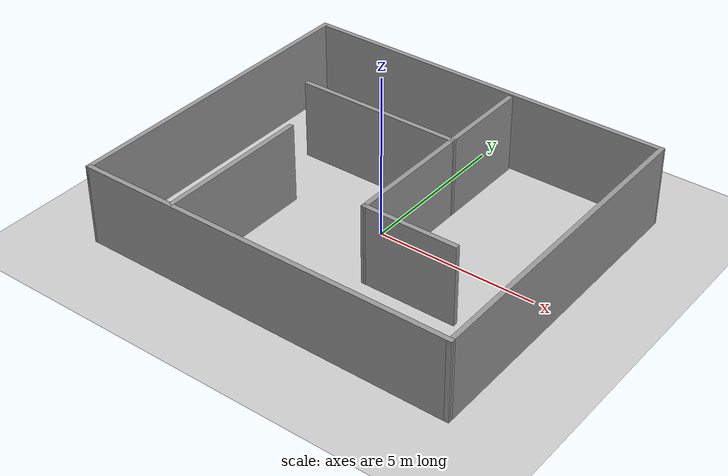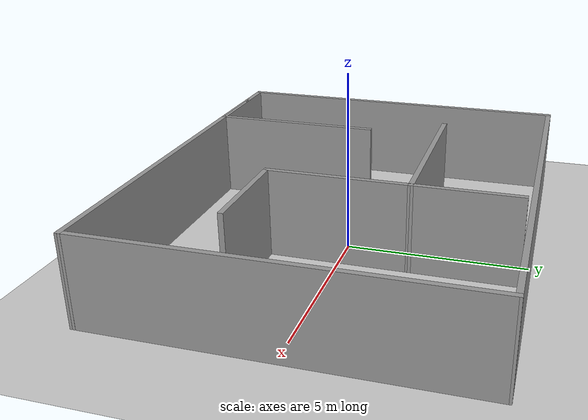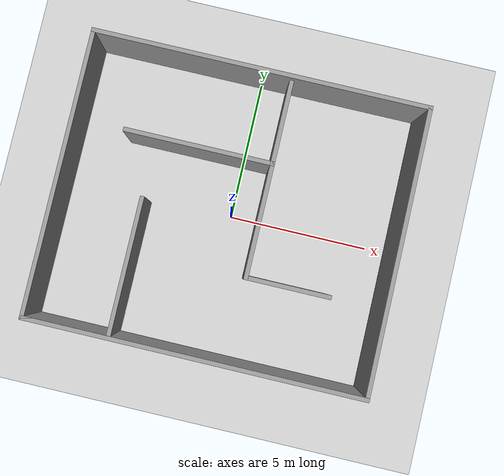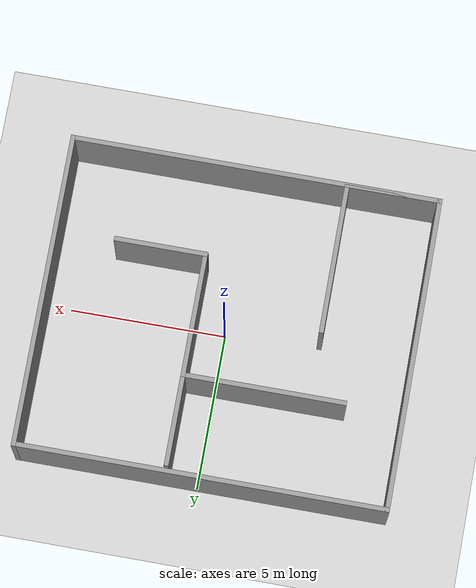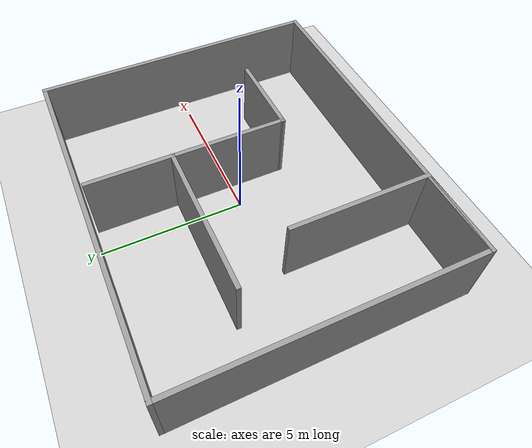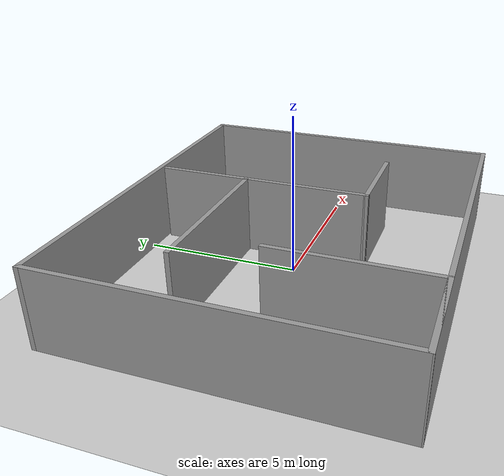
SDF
<sdf version="1.6">
 <world name="default">
  <light name="sun" type="directional">
   <pose>0 0 10 0 -0 0</pose>
   <diffuse>0.8 0.8 0.8 1</diffuse>
   <specular>0.2 0.2 0.2 1</specular>
   <attenuation>
    <range>1000</range>
    <constant>0.9</constant>
    <linear>0.01</linear>
    <quadratic>0.001</quadratic>
   </attenuation>
   <direction>-0.5 0.1 -0.9</direction>
  </light>
  <model name="ground_plane">
   <static>1</static>
   <link name="link">
    <collision name="collision">
     <geometry><plane><normal>0 0 1</normal><size>100 100</size></plane></geometry>
     <surface>
      <contact><collide_bitmask>65535</collide_bitmask></contact>
      <friction><ode><mu>100</mu><mu2>50</mu2></ode></friction>
     </surface>
    </collision>
    <visual name="visual">
     <cast_shadows>0</cast_shadows>
     <geometry><plane><normal>0 0 1</normal><size>100 100</size></plane></geometry>
     <material>
      <script><uri>file://media/materials/scripts/gazebo.material</uri><name>Gazebo/Grey</name></script>
     </material>
    </visual>
   </link>
  </model>
  <gravity>0 0 -9.8</gravity>
  <magnetic_field>6e-06 2.3e-05 -4.2e-05</magnetic_field>
  <atmosphere type="adiabatic"/>
  <physics name="default_physics" default="0" type="ode">
   <max_step_size>0.001</max_step_size>
   <real_time_factor>1</real_time_factor>
   <real_time_update_rate>1000</real_time_update_rate>
  </physics>
  <scene><ambient>0.4 0.4 0.4 1</ambient><background>0.7 0.7 0.7 1</background><shadows>1</shadows></scene>
  <audio><device>default</device></audio>
  <spherical_coordinates>
   <surface_model>EARTH_WGS84</surface_model>
   <latitude_deg>0</latitude_deg>
   <longitude_deg>0</longitude_deg>
   <elevation>0</elevation>
   <heading_deg>0</heading_deg>
  </spherical_coordinates>
  <model name="rover_bot_room">
   <pose>-0.109861 -0.00476 0 0 -0 0</pose>
   <link name="Wall_10">
    <collision name="Wall_10_Collision">
     <geometry><box><size>10.15 0.15 2.5</size></box></geometry>
     <pose>0 0 1.25 0 -0 0</pose>
    </collision>
    <visual name="Wall_10_Visual">
     <pose>0 0 1.25 0 -0 0</pose>
     <geometry><box><size>10.15 0.15 2.5</size></box></geometry>
     <material>
      <script><uri>file://media/materials/scripts/gazebo.material</uri><name>Gazebo/Grey</name></script>
      <ambient>1 1 1 1</ambient>
     </material>
     <meta><layer>0</layer></meta>
    </visual>
    <pose>-5.89014 0.00476 0 0 -0 -1.5708</pose>
   </link>
   <link name="Wall_11">
    <collision name="Wall_11_Collision">
     <geometry><box><size>3.11 0.15 2.5</size></box></geometry>
     <pose>0 0 1.25 0 -0 0</pose>
    </collision>
    <visual name="Wall_11_Visual">
     <pose>0 0 1.25 0 -0 0</pose>
     <geometry><box><size>3.11 0.15 2.5</size></box></geometry>
     <material>
      <script><uri>file://media/materials/scripts/gazebo.material</uri><name>Gazebo/Grey</name></script>
      <ambient>1 1 1 1</ambient>
     </material>
     <meta><layer>0</layer></meta>
    </visual>
    <pose>-4.41014 -4.99524 0 0 -0 0</pose>
   </link>
   <link name="Wall_13">
    <collision name="Wall_13_Collision">
     <geometry><box><size>5.25 0.15 2.5</size></box></geometry>
     <pose>0 0 1.25 0 -0 0</pose>
    </collision>
    <visual name="Wall_13_Visual">
     <pose>0 0 1.25 0 -0 0</pose>
     <geometry><box><size>5.25 0.15 2.5</size></box></geometry>
     <material>
      <script><uri>file://media/materials/scripts/gazebo.material</uri><name>Gazebo/Grey</name></script>
      <ambient>1 1 1 1</ambient>
     </material>
     <meta><layer>0</layer></meta>
    </visual>
    <pose>-1.47266 1.92967 0 0 -0 0</pose>
   </link>
   <link name="Wall_14">
    <collision name="Wall_14_Collision">
     <geometry><box><size>4.07491 0.15 2.5</size></box></geometry>
     <pose>0 0 1.25 0 -0 0</pose>
    </collision>
    <visual name="Wall_14_Visual">
     <pose>0 0 1.25 0 -0 0</pose>
     <geometry><box><size>4.07491 0.15 2.5</size></box></geometry>
     <material>
      <script><uri>file://media/materials/scripts/gazebo.material</uri><name>Gazebo/Grey</name></script>
      <ambient>1 1 1 1</ambient>
     </material>
     <meta><layer>0</layer></meta>
    </visual>
    <pose>1.0771 -0.032784 0 0 -0 -1.57092</pose>
   </link>
   <link name="Wall_15">
    <collision name="Wall_15_Collision">
     <geometry><box><size>3 0.15 2.5</size></box></geometry>
     <pose>0 0 1.25 0 -0 0</pose>
    </collision>
    <visual name="Wall_15_Visual">
     <pose>0 0 1.25 0 -0 0</pose>
     <geometry><box><size>3 0.15 2.5</size></box></geometry>
     <material>
      <script><uri>file://media/materials/scripts/gazebo.material</uri><name>Gazebo/Grey</name></script>
      <ambient>1 1 1 1</ambient>
     </material>
     <meta><layer>0</layer></meta>
    </visual>
    <pose>2.50186 -1.99524 0 0 -0 0</pose>
   </link>
   <link name="Wall_17">
    <collision name="Wall_17_Collision">
     <geometry><box><size>3 0.15 2.5</size></box></geometry>
     <pose>0 0 1.25 0 -0 0</pose>
    </collision>
    <visual name="Wall_17_Visual">
     <pose>0 0 1.25 0 -0 0</pose>
     <geometry><box><size>3 0.15 2.5</size></box></geometry>
     <material>
      <script><uri>file://media/materials/scripts/gazebo.material</uri><name>Gazebo/Grey</name></script>
      <ambient>1 1 1 1</ambient>
     </material>
     <meta><layer>0</layer></meta>
    </visual>
    <pose>1.07733 3.35467 0 0 -0 1.5708</pose>
   </link>
   <link name="Wall_5">
    <collision name="Wall_5_Collision">
     <geometry><box><size>4.932 0.15 2.5</size></box></geometry>
     <pose>0 0 1.25 0 -0 0</pose>
    </collision>
    <visual name="Wall_5_Visual">
     <pose>0 0 1.25 0 -0 0</pose>
     <geometry><box><size>4.932 0.15 2.5</size></box></geometry>
     <material>
      <script><uri>file://media/materials/scripts/gazebo.material</uri><name>Gazebo/Grey</name></script>
      <ambient>1 1 1 1</ambient>
     </material>
     <meta><layer>0</layer></meta>
    </visual>
    <pose>-2.93014 -2.60424 0 0 -0 1.5708</pose>
   </link>
   <link name="Wall_7">
    <collision name="Wall_7_Collision">
     <geometry><box><size>11.9301 0.15 2.5</size></box></geometry>
     <pose>0 0 1.25 0 -0 0</pose>
    </collision>
    <visual name="Wall_7_Visual">
     <pose>0 0 1.25 0 -0 0</pose>
     <geometry><box><size>11.9301 0.15 2.5</size></box></geometry>
     <material>
      <script><uri>file://media/materials/scripts/gazebo.material</uri><name>Gazebo/Grey</name></script>
      <ambient>1 1 1 1</ambient>
     </material>
     <meta><layer>0</layer></meta>
    </visual>
    <pose>-8.3e-05 -5 0 0 -0 -0.000808</pose>
   </link>
   <link name="Wall_8">
    <collision name="Wall_8_Collision">
     <geometry><box><size>10.1602 0.15 2.5</size></box></geometry>
     <pose>0 0 1.25 0 -0 0</pose>
    </collision>
    <visual name="Wall_8_Visual">
     <pose>0 0 1.25 0 -0 0</pose>
     <geometry><box><size>10.1602 0.15 2.5</size></box></geometry>
     <material>
      <script><uri>file://media/materials/scripts/gazebo.material</uri><name>Gazebo/Grey</name></script>
      <ambient>1 1 1 1</ambient>
     </material>
     <meta><layer>0</layer></meta>
    </visual>
    <pose>5.87492 0 0 0 -0 1.5738</pose>
   </link>
   <link name="Wall_9">
    <collision name="Wall_9_Collision">
     <geometry><box><size>11.9 0.15 2.5</size></box></geometry>
     <pose>0 0 1.25 0 -0 0</pose>
    </collision>
    <visual name="Wall_9_Visual">
     <pose>0 0 1.25 0 -0 0</pose>
     <geometry><box><size>11.9 0.15 2.5</size></box></geometry>
     <material>
      <script><uri>file://media/materials/scripts/gazebo.material</uri><name>Gazebo/Grey</name></script>
      <ambient>1 1 1 1</ambient>
     </material>
     <meta><layer>0</layer></meta>
    </visual>
    <pose>-0.015139 5.00476 0 0 -0 3.14159</pose>
   </link>
   <static>1</static>
  </model>
 </world>
</sdf>
